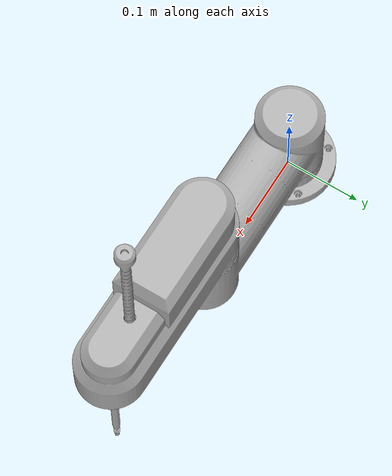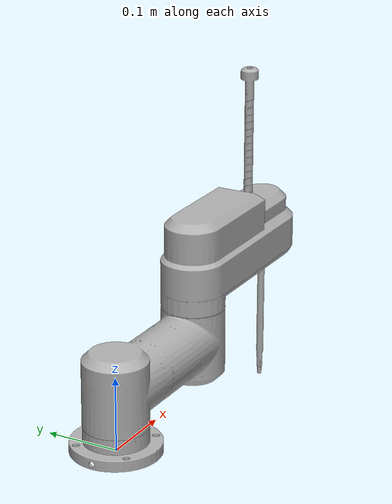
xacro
<?xml version='1.0' encoding='utf-8'?>
<robot xmlns:xacro="http://ros.org/wiki/xacro" name="utra4_450">

  <xacro:arg name="prefix" default=""/>
  <xacro:arg name="ros_namespace" default="utra"/>
  <xacro:arg name="limited" default="false"/>
  <xacro:arg name="effort_control" default="false"/>
  <xacro:arg name="attach_to_world" default="true"/>

    <!-- utra4_450 -->
    <xacro:include filename="$(find utra_description)/urdf/utra4_450.urdf.xacro" />

    <xacro:if value="$(arg attach_to_world)">
      <link name="world" />
    </xacro:if>

    <joint name="$(arg prefix)world_joint" type="fixed">
      <parent link="world" />
      <child link = "$(arg prefix)base_link" />
      <origin xyz="0 0 0" rpy="0 0 0" />
    </joint>

    <xacro:if value="$(arg limited)">
      <xacro:utra4_450_urdf prefix="$(arg prefix)"
        joint1_lower_limit="${-2.0*pi}" joint1_upper_limit="${2.0*pi}"
        joint2_lower_limit="${-2.0*pi}" joint2_upper_limit="${2.0*pi}"
        joint3_lower_limit="${-2.0*pi}" joint3_upper_limit="${2.0*pi}"
        joint4_lower_limit="${-2.0*pi}" joint4_upper_limit="${2.0*pi}"/>
    </xacro:if>
    <xacro:unless value="$(arg limited)">
      <xacro:utra4_450_urdf prefix="$(arg prefix)"/>
    </xacro:unless>

  <xacro:include filename="$(find utra_description)/urdf/transmission.xacro" />

  <xacro:transmission_block joint_name="$(arg prefix)joint1"/>
  <xacro:transmission_block joint_name="$(arg prefix)joint2"/>
  <xacro:transmission_block joint_name="$(arg prefix)joint3"/>
  <xacro:transmission_block joint_name="$(arg prefix)joint4"/>

  <xacro:include filename="$(find utra_description)/urdf/utra4_450_common.gazebo.xacro" />

</robot>

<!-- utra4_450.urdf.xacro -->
<robot xmlns:xacro="http://ros.org/wiki/xacro">

  <xacro:macro name="utra4_450_urdf" params="prefix
    joint1_lower_limit:=${-2.0*pi} joint1_upper_limit:=${2.0*pi}
    joint2_lower_limit:=${-2.0*pi} joint2_upper_limit:=${2.0*pi}
    joint3_lower_limit:=${-2.0*pi} joint3_upper_limit:=${2.0*pi}
    joint4_lower_limit:=${-100.0*pi} joint4_upper_limit:=${100.0*pi}">

    <material name="Black">  <color rgba="0.0 0.0 0.0 1.0"/> </material>
    <material name="Red">    <color rgba="0.8 0.0 0.0 1.0"/> </material>
    <material name="White">  <color rgba="1.0 1.0 1.0 1.0"/> </material>
    <material name="Silver"> <color rgba="0.7 0.7 0.7 1.0"/> </material>

    <xacro:macro name="origin_joint1"> <origin xyz="0 0 0" rpy="0 0 0" /> </xacro:macro>
    <xacro:macro name="origin_joint2"> <origin xyz="0.1995 0 0.129" rpy="0 0 0" /> </xacro:macro>
    <xacro:macro name="origin_joint3"> <origin xyz="0.123 0 -0.13" rpy="0 0 0" /> </xacro:macro>
    <xacro:macro name="origin_joint4"> <origin xyz="0.0778 0 0" rpy="0 0 0" /> </xacro:macro>

    <xacro:macro name="origin_visual_base">  <origin xyz="0 0 0" rpy="0 0 0" /> </xacro:macro>
    <xacro:macro name="origin_visual_link_1"> <origin xyz="0 0 0" rpy="0 0 0" /> </xacro:macro>
    <xacro:macro name="origin_visual_link_2"> <origin xyz="0 0 0" rpy="0 0 0" /> </xacro:macro>
    <xacro:macro name="origin_visual_link_3"> <origin xyz="0 0 0" rpy="0 0 0" /> </xacro:macro>
    <xacro:macro name="origin_visual_link_4"> <origin xyz="0 0 0" rpy="0 0 0" /> </xacro:macro>

    <xacro:macro name="origin_inertial_base">  <origin xyz="0 0 0" rpy="0 0 0" /> </xacro:macro>
    <xacro:macro name="origin_inertial_link_1"> <origin xyz="0 0 0" rpy="0 0 0" /> </xacro:macro>
    <xacro:macro name="origin_inertial_link_2"> <origin xyz="0 0 0" rpy="0 0 0" /> </xacro:macro>
    <xacro:macro name="origin_inertial_link_3"> <origin xyz="0 0 0" rpy="0 0 0" /> </xacro:macro>
    <xacro:macro name="origin_inertial_link_4"> <origin xyz="0 0 0" rpy="0 0 0" /> </xacro:macro>

    <xacro:macro name="inertia_base">  <inertia ixx="0" ixy="0" ixz="0" iyy="0" iyz="0" izz="0" /> </xacro:macro>
    <xacro:macro name="inertia_link_1"> <inertia ixx="0" ixy="0" ixz="0" iyy="0" iyz="0" izz="0" /> </xacro:macro>
    <xacro:macro name="inertia_link_2"> <inertia ixx="0" ixy="0" ixz="0" iyy="0" iyz="0" izz="0" /> </xacro:macro>
    <xacro:macro name="inertia_link_3"> <inertia ixx="0" ixy="0" ixz="0" iyy="0" iyz="0" izz="0" /> </xacro:macro>
    <xacro:macro name="inertia_link_4"> <inertia ixx="0" ixy="0" ixz="0" iyy="0" iyz="0" izz="0" /> </xacro:macro>

    <xacro:property name="mass_base"  value="0.00001" />
    <xacro:property name="mass_link_1" value="0.00001" />
    <xacro:property name="mass_link_2" value="0.00001" />
    <xacro:property name="mass_link_3" value="0.00001" />
    <xacro:property name="mass_link_4" value="0.00001" />

    <xacro:property name="effort_joint1" value="0" />
    <xacro:property name="effort_joint2" value="0" />
    <xacro:property name="effort_joint3" value="1000" />
    <xacro:property name="effort_joint4" value="0" />

    <xacro:property name="damping_joint1" value="0" />
    <xacro:property name="damping_joint2" value="0" />
    <xacro:property name="damping_joint3" value="0.4" />
    <xacro:property name="damping_joint4" value="0" />

    <xacro:property name="friction_joint1" value="0" />
    <xacro:property name="friction_joint2" value="0" />
    <xacro:property name="friction_joint3" value="5" />
    <xacro:property name="friction_joint4" value="0" />

    <link name="${prefix}base_link">
      <inertial>
        <xacro:origin_inertial_base/>
        <mass value="${mass_base}" />
        <xacro:inertia_base/>
      </inertial>
      <visual>
        <xacro:origin_visual_base/>
        <geometry> <mesh filename="package://utra_description/meshes/utra4_450/visual/base.STL" /> </geometry>
        <material name="Silver" />
      </visual>
      <collision>
        <xacro:origin_visual_base/>
        <geometry> <mesh filename="package://utra_description/meshes/utra4_450/visual/base.STL" /> </geometry>
      </collision>
    </link>

    <joint name="${prefix}joint1" type="revolute">
      <xacro:origin_joint1/>
      <parent link="${prefix}base_link" />
      <child link="${prefix}link_1" />
      <axis xyz="0 0 -1" />
      <limit lower="${joint1_lower_limit}" upper="${joint1_upper_limit}" effort="${effort_joint1}" velocity="3.14" />
      <dynamics damping="${damping_joint1}" friction="${friction_joint1}" />
    </joint>

    <link name="${prefix}link_1">
      <inertial>
        <xacro:origin_inertial_link_1/>
        <mass value="${mass_link_1}" />
        <xacro:inertia_link_1/>
      </inertial>
      <visual>
        <xacro:origin_visual_link_1/>
        <geometry> <mesh filename="package://utra_description/meshes/utra4_450/visual/link1.STL" /> </geometry>
        <material name="Silver" />
      </visual>
      <collision>
        <xacro:origin_visual_link_1/>
        <geometry> <mesh filename="package://utra_description/meshes/utra4_450/visual/link1.STL" /> </geometry>
      </collision>
    </link>

    <joint name="${prefix}joint2" type="revolute">
      <xacro:origin_joint2/>
      <parent link="${prefix}link_1" />
      <child link="${prefix}link_2" />
      <axis xyz="0 0 -1" />
      <limit lower="${joint2_lower_limit}" upper="${joint2_upper_limit}" effort="${effort_joint2}" velocity="3.14" />
      <dynamics damping="${damping_joint2}" friction="${friction_joint2}" />
    </joint>

    <link name="${prefix}link_2">
      <inertial>
        <xacro:origin_inertial_link_2/>
        <mass value="${mass_link_2}" />
        <xacro:inertia_link_2/>
      </inertial>
      <visual>
        <xacro:origin_visual_link_2/>
        <geometry> <mesh filename="package://utra_description/meshes/utra4_450/visual/link2.STL" /> </geometry>
        <material name="Silver" />
      </visual>
      <collision>
        <xacro:origin_visual_link_2/>
        <geometry> <mesh filename="package://utra_description/meshes/utra4_450/visual/link2.STL" /> </geometry>
      </collision>
    </link>

    <joint name="${prefix}joint3" type="prismatic">
      <xacro:origin_joint3/>
      <parent link="${prefix}link_2" />
      <child link="${prefix}link_3" />
      <axis xyz="0 0 1" />
      <limit lower="-0.2" upper="0.8" effort="${effort_joint3}" velocity="3.14" />
      <dynamics damping="${damping_joint3}" friction="${friction_joint3}" />
    </joint>

    <link name="${prefix}link_3">
      <inertial>
        <xacro:origin_inertial_link_3/>
        <mass value="${mass_link_3}" />
        <xacro:inertia_link_3/>
      </inertial>
      <visual>
        <xacro:origin_visual_link_3/>
        <geometry> <mesh filename="package://utra_description/meshes/utra4_450/visual/link3.STL" /> </geometry>
        <material name="Silver" />
      </visual>
      <collision>
        <xacro:origin_visual_link_3/>
        <geometry> <mesh filename="package://utra_description/meshes/utra4_450/visual/link3.STL" /> </geometry>
      </collision>
    </link>

    <joint name="${prefix}joint4" type="revolute">
      <xacro:origin_joint4/>
      <parent link="${prefix}link_3" />
      <child link="${prefix}link_4" />
      <axis xyz="0 0 1" />
      <limit lower="-10000000000" upper="10000000000" effort="${effort_joint4}" velocity="3.14" />
      <dynamics damping="${damping_joint4}" friction="${friction_joint4}" />
    </joint>

    <link name="${prefix}link_4">
      <inertial>
        <xacro:origin_inertial_link_4/>
        <mass value="${mass_link_4}" />
        <xacro:inertia_link_4/>
      </inertial>
      <visual>
        <xacro:origin_visual_link_4/>
        <geometry> <mesh filename="package://utra_description/meshes/utra4_450/visual/link4.STL" /> </geometry>
        <material name="Silver" />
      </visual>
      <collision>
        <xacro:origin_visual_link_4/>
        <geometry> <mesh filename="package://utra_description/meshes/utra4_450/visual/link4.STL" /> </geometry>
      </collision>
    </link>

  </xacro:macro>
</robot>
